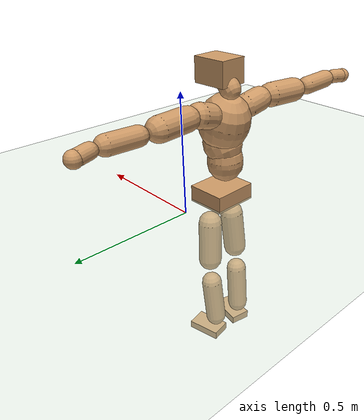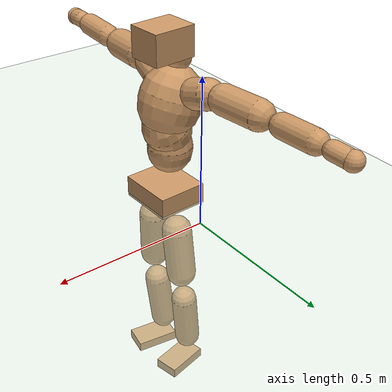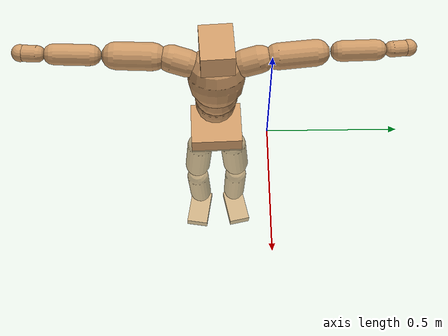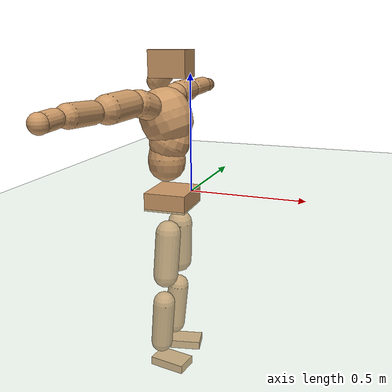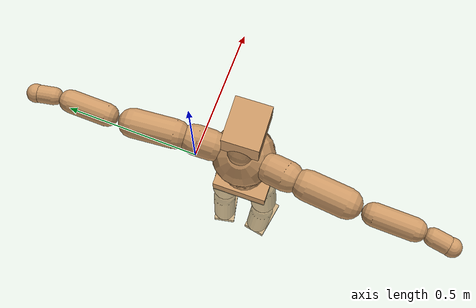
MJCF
<mujoco model="humanoid">
  <compiler coordinate="local" angle="radian"/>
  <default>
    <joint damping="0.0" armature="0.01" stiffness="0.0" limited="true"/>
    <geom conaffinity="1" condim="3" contype="7" margin="0.001" rgba="0.8 0.6 .4 1"/>
  </default>
  <asset>
    <texture type="skybox" builtin="gradient" rgb1=".4 .5 .6" rgb2="0 0 0" width="100" height="100"/>
    <texture builtin="flat" height="1278" mark="cross" markrgb="1 1 1" name="texgeom" random="0.01" rgb1="0.8 0.6 0.4" rgb2="0.8 0.6 0.4" type="cube" width="127"/>
    <texture builtin="checker" height="100" name="texplane" rgb1="0 0 0" rgb2="0.8 0.8 0.8" type="2d" width="100"/>
    <material name="MatPlane" reflectance="0.5" shininess="1" specular="1" texrepeat="60 60" texture="texplane"/>
    <material name="geom" texture="texgeom" texuniform="true"/>
  </asset>
  <worldbody>
    <light cutoff="100" diffuse="1 1 1" dir="-0 0 -1.3" directional="true" exponent="1" pos="0 0 1.3" specular=".1 .1 .1"/>
    <geom conaffinity="1" condim="3" name="floor" pos="0 0 0" rgba="0.8 0.9 0.8 1" size="100 100 .2" type="plane" material="MatPlane"/>
    <body name="Pelvis" pos="-0.0011 -0.1976 0.0375">
      <freejoint name="Pelvis"/>
      <geom type="box" contype="1" conaffinity="1" density="500" pos="-0.0033 -0.0001 -0.0113" size="0.0838 0.0965 0.0361" quat="0.9999 0.0000 0.0000 0.0152" name="Pelvis"/>
      <body name="L_Hip" pos="0.0017 0.0618 -0.079">
        <joint name="L_Hip_x" type="hinge" pos="0 0 0" axis="1 0 0" stiffness="800" damping="80" armature="0.02" range="-180.0000 180.0000"/>
        <joint name="L_Hip_y" type="hinge" pos="0 0 0" axis="0 1 0" stiffness="800" damping="80" armature="0.02" range="-180.0000 180.0000"/>
        <joint name="L_Hip_z" type="hinge" pos="0 0 0" axis="0 0 1" stiffness="800" damping="80" armature="0.02" range="-180.0000 180.0000"/>
        <geom type="capsule" contype="1" conaffinity="1" density="500" fromto="-0.0032 0.0040 -0.0593 -0.0126 0.0159 -0.2373" size="0.0504" name="L_Hip"/>
        <body name="L_Knee" pos="-0.0158 0.0199 -0.2966">
          <joint name="L_Knee_x" type="hinge" pos="0 0 0" axis="1 0 0" stiffness="800" damping="80" armature="0.02" range="-180.0000 180.0000"/>
          <joint name="L_Knee_y" type="hinge" pos="0 0 0" axis="0 1 0" stiffness="800" damping="80" armature="0.02" range="-180.0000 180.0000"/>
          <joint name="L_Knee_z" type="hinge" pos="0 0 0" axis="0 0 1" stiffness="800" damping="80" armature="0.02" range="-180.0000 180.0000"/>
          <geom type="capsule" contype="1" conaffinity="1" density="500" fromto="-0.0065 -0.0020 -0.0635 -0.0258 -0.0080 -0.2540" size="0.0443" name="L_Knee"/>
          <body name="L_Ankle" pos="-0.0323 -0.01 -0.3175">
            <joint name="L_Ankle_x" type="hinge" pos="0 0 0" axis="1 0 0" stiffness="800" damping="80" armature="0.02" range="-180.0000 180.0000"/>
            <joint name="L_Ankle_y" type="hinge" pos="0 0 0" axis="0 1 0" stiffness="800" damping="80" armature="0.02" range="-180.0000 180.0000"/>
            <joint name="L_Ankle_z" type="hinge" pos="0 0 0" axis="0 0 1" stiffness="800" damping="80" armature="0.02" range="-180.0000 180.0000"/>
            <geom type="box" contype="1" conaffinity="1" density="500" pos="0.0508 0.0108 -0.0241" size="0.0738 0.043 0.0179" quat="0.9945 0.0000 0.0000 0.1045" name="L_Ankle"/>
            <body name="L_Toe" pos="0.1017 0.0216 -0.0482">
              <joint name="L_Toe_x" type="hinge" pos="0 0 0" axis="1 0 0" stiffness="500" damping="50" armature="0.02" range="-180.0000 180.0000"/>
              <joint name="L_Toe_y" type="hinge" pos="0 0 0" axis="0 1 0" stiffness="500" damping="50" armature="0.02" range="-180.0000 180.0000"/>
              <joint name="L_Toe_z" type="hinge" pos="0 0 0" axis="0 0 1" stiffness="500" damping="50" armature="0.02" range="-180.0000 180.0000"/>
              <geom type="box" contype="1" conaffinity="1" density="500" pos="0.0000 0.0000 0.0247" size="0.0009 0.0022 0.0009" quat="0.9937 0.0000 0.0000 0.1117" name="L_Toe"/>
            </body>
          </body>
        </body>
      </body>
      <body name="R_Hip" pos="0.0043 -0.0607 -0.08">
        <joint name="R_Hip_x" type="hinge" pos="0 0 0" axis="1 0 0" stiffness="800" damping="80" armature="0.02" range="-180.0000 180.0000"/>
        <joint name="R_Hip_y" type="hinge" pos="0 0 0" axis="0 1 0" stiffness="800" damping="80" armature="0.02" range="-180.0000 180.0000"/>
        <joint name="R_Hip_z" type="hinge" pos="0 0 0" axis="0 0 1" stiffness="800" damping="80" armature="0.02" range="-180.0000 180.0000"/>
        <geom type="capsule" contype="1" conaffinity="1" density="500" fromto="-0.0031 -0.0048 -0.0601 -0.0125 -0.0193 -0.2403" size="0.0499" name="R_Hip"/>
        <body name="R_Knee" pos="-0.0157 -0.0241 -0.3004">
          <joint name="R_Knee_x" type="hinge" pos="0 0 0" axis="1 0 0" stiffness="800" damping="80" armature="0.02" range="-180.0000 180.0000"/>
          <joint name="R_Knee_y" type="hinge" pos="0 0 0" axis="0 1 0" stiffness="800" damping="80" armature="0.02" range="-180.0000 180.0000"/>
          <joint name="R_Knee_z" type="hinge" pos="0 0 0" axis="0 0 1" stiffness="800" damping="80" armature="0.02" range="-180.0000 180.0000"/>
          <geom type="capsule" contype="1" conaffinity="1" density="500" fromto="-0.0063 0.0024 -0.0639 -0.0253 0.0097 -0.2557" size="0.0448" name="R_Knee"/>
          <body name="R_Ankle" pos="-0.0316 0.0121 -0.3196">
            <joint name="R_Ankle_x" type="hinge" pos="0 0 0" axis="1 0 0" stiffness="800" damping="80" armature="0.02" range="-180.0000 180.0000"/>
            <joint name="R_Ankle_y" type="hinge" pos="0 0 0" axis="0 1 0" stiffness="800" damping="80" armature="0.02" range="-180.0000 180.0000"/>
            <joint name="R_Ankle_z" type="hinge" pos="0 0 0" axis="0 0 1" stiffness="800" damping="80" armature="0.02" range="-180.0000 180.0000"/>
            <geom type="box" contype="1" conaffinity="1" density="500" pos="0.0527 -0.0085 -0.0192" size="0.075 0.0441 0.0177" quat="0.9968 0.0000 0.0000 -0.0800" name="R_Ankle"/>
            <body name="R_Toe" pos="0.1053 -0.017 -0.0384">
              <joint name="R_Toe_x" type="hinge" pos="0 0 0" axis="1 0 0" stiffness="500" damping="50" armature="0.02" range="-180.0000 180.0000"/>
              <joint name="R_Toe_y" type="hinge" pos="0 0 0" axis="0 1 0" stiffness="500" damping="50" armature="0.02" range="-180.0000 180.0000"/>
              <joint name="R_Toe_z" type="hinge" pos="0 0 0" axis="0 0 1" stiffness="500" damping="50" armature="0.02" range="-180.0000 180.0000"/>
              <geom type="box" contype="1" conaffinity="1" density="500" pos="0.0000 0.0000 0.0211" size="0.0009 0.0023 0.001" quat="0.9976 0.0000 0.0000 -0.0694" name="R_Toe"/>
            </body>
          </body>
        </body>
      </body>
      <body name="Torso" pos="-0.026 -0.0018 0.0912">
        <joint name="Torso_x" type="hinge" pos="0 0 0" axis="1 0 0" stiffness="1000" damping="100" armature="0.02" range="-180.0000 180.0000"/>
        <joint name="Torso_y" type="hinge" pos="0 0 0" axis="0 1 0" stiffness="1000" damping="100" armature="0.02" range="-180.0000 180.0000"/>
        <joint name="Torso_z" type="hinge" pos="0 0 0" axis="0 0 1" stiffness="1000" damping="100" armature="0.02" range="-180.0000 180.0000"/>
        <geom type="capsule" contype="1" conaffinity="1" density="500" fromto="0.0006 0.0014 0.0607 0.0004 0.0010 0.0405" size="0.0747" name="Torso"/>
        <body name="Spine" pos="0.0009 0.0024 0.1012">
          <joint name="Spine_x" type="hinge" pos="0 0 0" axis="1 0 0" stiffness="1000" damping="100" armature="0.02" range="-180.0000 180.0000"/>
          <joint name="Spine_y" type="hinge" pos="0 0 0" axis="0 1 0" stiffness="1000" damping="100" armature="0.02" range="-180.0000 180.0000"/>
          <joint name="Spine_z" type="hinge" pos="0 0 0" axis="0 0 1" stiffness="1000" damping="100" armature="0.02" range="-180.0000 180.0000"/>
          <geom type="capsule" contype="1" conaffinity="1" density="500" fromto="0.0151 0.0022 0.0271 0.0100 0.0015 0.0181" size="0.0799" name="Spine"/>
          <body name="Chest" pos="0.0251 0.0037 0.0452">
            <joint name="Chest_x" type="hinge" pos="0 0 0" axis="1 0 0" stiffness="1000" damping="100" armature="0.02" range="-180.0000 180.0000"/>
            <joint name="Chest_y" type="hinge" pos="0 0 0" axis="0 1 0" stiffness="1000" damping="100" armature="0.02" range="-180.0000 180.0000"/>
            <joint name="Chest_z" type="hinge" pos="0 0 0" axis="0 0 1" stiffness="1000" damping="100" armature="0.02" range="-180.0000 180.0000"/>
            <geom type="capsule" contype="1" conaffinity="1" density="500" fromto="-0.0322 -0.0004 0.0870 -0.0215 -0.0003 0.0580" size="0.1024" name="Chest"/>
            <body name="Neck" pos="-0.067 0.0003 0.1985">
              <joint name="Neck_x" type="hinge" pos="0 0 0" axis="1 0 0" stiffness="500" damping="50" armature="0.02" range="-180.0000 180.0000"/>
              <joint name="Neck_y" type="hinge" pos="0 0 0" axis="0 1 0" stiffness="500" damping="50" armature="0.02" range="-180.0000 180.0000"/>
              <joint name="Neck_z" type="hinge" pos="0 0 0" axis="0 0 1" stiffness="500" damping="50" armature="0.02" range="-180.0000 180.0000"/>
              <geom type="capsule" contype="1" conaffinity="1" density="500" fromto="0.0087 0.0001 0.0096 0.0350 0.0005 0.0386" size="0.0414" name="Neck"/>
              <body name="Head" pos="0.0437 0.0006 0.0482">
                <joint name="Head_x" type="hinge" pos="0 0 0" axis="1 0 0" stiffness="500" damping="50" armature="0.02" range="-180.0000 180.0000"/>
                <joint name="Head_y" type="hinge" pos="0 0 0" axis="0 1 0" stiffness="500" damping="50" armature="0.02" range="-180.0000 180.0000"/>
                <joint name="Head_z" type="hinge" pos="0 0 0" axis="0 0 1" stiffness="500" damping="50" armature="0.02" range="-180.0000 180.0000"/>
                <geom type="box" contype="1" conaffinity="1" density="500" pos="0.0229 0.0013 0.0251" size="0.0723 0.0589 0.0503" quat="0.9996 0.0000 0.0000 0.0287" name="Head"/>
              </body>
            </body>
            <body name="L_Thorax" pos="-0.0454 0.081 0.1196">
              <joint name="L_Thorax_x" type="hinge" pos="0 0 0" axis="1 0 0" stiffness="500" damping="50" armature="0.02" range="-180.0000 180.0000"/>
              <joint name="L_Thorax_y" type="hinge" pos="0 0 0" axis="0 1 0" stiffness="500" damping="50" armature="0.02" range="-180.0000 180.0000"/>
              <joint name="L_Thorax_z" type="hinge" pos="0 0 0" axis="0 0 1" stiffness="500" damping="50" armature="0.02" range="-180.0000 180.0000"/>
              <geom type="capsule" contype="1" conaffinity="1" density="500" fromto="-0.0020 0.0182 0.0051 -0.0079 0.0727 0.0206" size="0.0501" name="L_Thorax"/>
              <body name="L_Shoulder" pos="-0.0099 0.0909 0.0257">
                <joint name="L_Shoulder_x" type="hinge" pos="0 0 0" axis="1 0 0" stiffness="500" damping="50" armature="0.02" range="-720.0000 720.0000"/>
                <joint name="L_Shoulder_y" type="hinge" pos="0 0 0" axis="0 1 0" stiffness="500" damping="50" armature="0.02" range="-720.0000 720.0000"/>
                <joint name="L_Shoulder_z" type="hinge" pos="0 0 0" axis="0 0 1" stiffness="500" damping="50" armature="0.02" range="-720.0000 720.0000"/>
                <geom type="capsule" contype="1" conaffinity="1" density="500" fromto="-0.0046 0.0454 0.0001 -0.0182 0.1817 0.0004" size="0.0482" name="L_Shoulder"/>
                <body name="L_Elbow" pos="-0.0228 0.2272 0.0005">
                  <joint name="L_Elbow_x" type="hinge" pos="0 0 0" axis="1 0 0" stiffness="500" damping="50" armature="0.02" range="-720.0000 720.0000"/>
                  <joint name="L_Elbow_y" type="hinge" pos="0 0 0" axis="0 1 0" stiffness="500" damping="50" armature="0.02" range="-720.0000 720.0000"/>
                  <joint name="L_Elbow_z" type="hinge" pos="0 0 0" axis="0 0 1" stiffness="500" damping="50" armature="0.02" range="-720.0000 720.0000"/>
                  <geom type="capsule" contype="1" conaffinity="1" density="500" fromto="-0.0002 0.0414 0.0012 -0.0009 0.1655 0.0050" size="0.0373" name="L_Elbow"/>
                  <body name="L_Wrist" pos="-0.0012 0.2069 0.0062">
                    <joint name="L_Wrist_x" type="hinge" pos="0 0 0" axis="1 0 0" stiffness="300" damping="30" armature="0.02" range="-180.0000 180.0000"/>
                    <joint name="L_Wrist_y" type="hinge" pos="0 0 0" axis="0 1 0" stiffness="300" damping="30" armature="0.02" range="-180.0000 180.0000"/>
                    <joint name="L_Wrist_z" type="hinge" pos="0 0 0" axis="0 0 1" stiffness="300" damping="30" armature="0.02" range="-180.0000 180.0000"/>
                    <geom type="capsule" contype="1" conaffinity="1" density="500" fromto="-0.0024 0.0150 -0.0017 -0.0097 0.0599 -0.0068" size="0.0288" name="L_Wrist"/>
                    <body name="L_Hand" pos="-0.0122 0.0749 -0.0085">
                      <joint name="L_Hand_x" type="hinge" pos="0 0 0" axis="1 0 0" stiffness="300" damping="30" armature="0.02" range="-180.0000 180.0000"/>
                      <joint name="L_Hand_y" type="hinge" pos="0 0 0" axis="0 1 0" stiffness="300" damping="30" armature="0.02" range="-180.0000 180.0000"/>
                      <joint name="L_Hand_z" type="hinge" pos="0 0 0" axis="0 0 1" stiffness="300" damping="30" armature="0.02" range="-180.0000 180.0000"/>
                      <geom type="sphere" contype="1" conaffinity="1" density="500" size="0.0304" pos="0.0000 0.0000 0.0000" name="L_Hand"/>
                    </body>
                  </body>
                </body>
              </body>
            </body>
            <body name="R_Thorax" pos="-0.0486 -0.0832 0.1167">
              <joint name="R_Thorax_x" type="hinge" pos="0 0 0" axis="1 0 0" stiffness="500" damping="50" armature="0.02" range="-180.0000 180.0000"/>
              <joint name="R_Thorax_y" type="hinge" pos="0 0 0" axis="0 1 0" stiffness="500" damping="50" armature="0.02" range="-180.0000 180.0000"/>
              <joint name="R_Thorax_z" type="hinge" pos="0 0 0" axis="0 0 1" stiffness="500" damping="50" armature="0.02" range="-180.0000 180.0000"/>
              <geom type="capsule" contype="1" conaffinity="1" density="500" fromto="-0.0031 -0.0188 0.0055 -0.0125 -0.0753 0.0221" size="0.05" name="R_Thorax"/>
              <body name="R_Shoulder" pos="-0.0156 -0.0941 0.0276">
                <joint name="R_Shoulder_x" type="hinge" pos="0 0 0" axis="1 0 0" stiffness="500" damping="50" armature="0.02" range="-720.0000 720.0000"/>
                <joint name="R_Shoulder_y" type="hinge" pos="0 0 0" axis="0 1 0" stiffness="500" damping="50" armature="0.02" range="-720.0000 720.0000"/>
                <joint name="R_Shoulder_z" type="hinge" pos="0 0 0" axis="0 0 1" stiffness="500" damping="50" armature="0.02" range="-720.0000 720.0000"/>
                <geom type="capsule" contype="1" conaffinity="1" density="500" fromto="-0.0029 -0.0444 -0.0012 -0.0116 -0.1777 -0.0049" size="0.0503" name="R_Shoulder"/>
                <body name="R_Elbow" pos="-0.0145 -0.2221 -0.0062">
                  <joint name="R_Elbow_x" type="hinge" pos="0 0 0" axis="1 0 0" stiffness="500" damping="50" armature="0.02" range="-720.0000 720.0000"/>
                  <joint name="R_Elbow_y" type="hinge" pos="0 0 0" axis="0 1 0" stiffness="500" damping="50" armature="0.02" range="-720.0000 720.0000"/>
                  <joint name="R_Elbow_z" type="hinge" pos="0 0 0" axis="0 0 1" stiffness="500" damping="50" armature="0.02" range="-720.0000 720.0000"/>
                  <geom type="capsule" contype="1" conaffinity="1" density="500" fromto="-0.0005 -0.0432 0.0020 -0.0021 -0.1729 0.0080" size="0.0381" name="R_Elbow"/>
                  <body name="R_Wrist" pos="-0.0026 -0.2161 0.01">
                    <joint name="R_Wrist_x" type="hinge" pos="0 0 0" axis="1 0 0" stiffness="300" damping="30" armature="0.02" range="-180.0000 180.0000"/>
                    <joint name="R_Wrist_y" type="hinge" pos="0 0 0" axis="0 1 0" stiffness="300" damping="30" armature="0.02" range="-180.0000 180.0000"/>
                    <joint name="R_Wrist_z" type="hinge" pos="0 0 0" axis="0 0 1" stiffness="300" damping="30" armature="0.02" range="-180.0000 180.0000"/>
                    <geom type="capsule" contype="1" conaffinity="1" density="500" fromto="-0.0020 -0.0154 -0.0014 -0.0079 -0.0617 -0.0055" size="0.0301" name="R_Wrist"/>
                    <body name="R_Hand" pos="-0.0099 -0.0772 -0.0069">
                      <joint name="R_Hand_x" type="hinge" pos="0 0 0" axis="1 0 0" stiffness="300" damping="30" armature="0.02" range="-180.0000 180.0000"/>
                      <joint name="R_Hand_y" type="hinge" pos="0 0 0" axis="0 1 0" stiffness="300" damping="30" armature="0.02" range="-180.0000 180.0000"/>
                      <joint name="R_Hand_z" type="hinge" pos="0 0 0" axis="0 0 1" stiffness="300" damping="30" armature="0.02" range="-180.0000 180.0000"/>
                      <geom type="sphere" contype="1" conaffinity="1" density="500" size="0.0312" pos="0.0000 0.0000 0.0000" name="R_Hand"/>
                    </body>
                  </body>
                </body>
              </body>
            </body>
          </body>
        </body>
      </body>
    </body>
  </worldbody>
  <actuator>
    <motor name="L_Hip_x" joint="L_Hip_x" gear="500"/>
    <motor name="L_Hip_y" joint="L_Hip_y" gear="500"/>
    <motor name="L_Hip_z" joint="L_Hip_z" gear="500"/>
    <motor name="L_Knee_x" joint="L_Knee_x" gear="500"/>
    <motor name="L_Knee_y" joint="L_Knee_y" gear="500"/>
    <motor name="L_Knee_z" joint="L_Knee_z" gear="500"/>
    <motor name="L_Ankle_x" joint="L_Ankle_x" gear="500"/>
    <motor name="L_Ankle_y" joint="L_Ankle_y" gear="500"/>
    <motor name="L_Ankle_z" joint="L_Ankle_z" gear="500"/>
    <motor name="L_Toe_x" joint="L_Toe_x" gear="500"/>
    <motor name="L_Toe_y" joint="L_Toe_y" gear="500"/>
    <motor name="L_Toe_z" joint="L_Toe_z" gear="500"/>
    <motor name="R_Hip_x" joint="R_Hip_x" gear="500"/>
    <motor name="R_Hip_y" joint="R_Hip_y" gear="500"/>
    <motor name="R_Hip_z" joint="R_Hip_z" gear="500"/>
    <motor name="R_Knee_x" joint="R_Knee_x" gear="500"/>
    <motor name="R_Knee_y" joint="R_Knee_y" gear="500"/>
    <motor name="R_Knee_z" joint="R_Knee_z" gear="500"/>
    <motor name="R_Ankle_x" joint="R_Ankle_x" gear="500"/>
    <motor name="R_Ankle_y" joint="R_Ankle_y" gear="500"/>
    <motor name="R_Ankle_z" joint="R_Ankle_z" gear="500"/>
    <motor name="R_Toe_x" joint="R_Toe_x" gear="500"/>
    <motor name="R_Toe_y" joint="R_Toe_y" gear="500"/>
    <motor name="R_Toe_z" joint="R_Toe_z" gear="500"/>
    <motor name="Torso_x" joint="Torso_x" gear="500"/>
    <motor name="Torso_y" joint="Torso_y" gear="500"/>
    <motor name="Torso_z" joint="Torso_z" gear="500"/>
    <motor name="Spine_x" joint="Spine_x" gear="500"/>
    <motor name="Spine_y" joint="Spine_y" gear="500"/>
    <motor name="Spine_z" joint="Spine_z" gear="500"/>
    <motor name="Chest_x" joint="Chest_x" gear="500"/>
    <motor name="Chest_y" joint="Chest_y" gear="500"/>
    <motor name="Chest_z" joint="Chest_z" gear="500"/>
    <motor name="Neck_x" joint="Neck_x" gear="500"/>
    <motor name="Neck_y" joint="Neck_y" gear="500"/>
    <motor name="Neck_z" joint="Neck_z" gear="500"/>
    <motor name="Head_x" joint="Head_x" gear="500"/>
    <motor name="Head_y" joint="Head_y" gear="500"/>
    <motor name="Head_z" joint="Head_z" gear="500"/>
    <motor name="L_Thorax_x" joint="L_Thorax_x" gear="500"/>
    <motor name="L_Thorax_y" joint="L_Thorax_y" gear="500"/>
    <motor name="L_Thorax_z" joint="L_Thorax_z" gear="500"/>
    <motor name="L_Shoulder_x" joint="L_Shoulder_x" gear="500"/>
    <motor name="L_Shoulder_y" joint="L_Shoulder_y" gear="500"/>
    <motor name="L_Shoulder_z" joint="L_Shoulder_z" gear="500"/>
    <motor name="L_Elbow_x" joint="L_Elbow_x" gear="500"/>
    <motor name="L_Elbow_y" joint="L_Elbow_y" gear="500"/>
    <motor name="L_Elbow_z" joint="L_Elbow_z" gear="500"/>
    <motor name="L_Wrist_x" joint="L_Wrist_x" gear="500"/>
    <motor name="L_Wrist_y" joint="L_Wrist_y" gear="500"/>
    <motor name="L_Wrist_z" joint="L_Wrist_z" gear="500"/>
    <motor name="L_Hand_x" joint="L_Hand_x" gear="500"/>
    <motor name="L_Hand_y" joint="L_Hand_y" gear="500"/>
    <motor name="L_Hand_z" joint="L_Hand_z" gear="500"/>
    <motor name="R_Thorax_x" joint="R_Thorax_x" gear="500"/>
    <motor name="R_Thorax_y" joint="R_Thorax_y" gear="500"/>
    <motor name="R_Thorax_z" joint="R_Thorax_z" gear="500"/>
    <motor name="R_Shoulder_x" joint="R_Shoulder_x" gear="500"/>
    <motor name="R_Shoulder_y" joint="R_Shoulder_y" gear="500"/>
    <motor name="R_Shoulder_z" joint="R_Shoulder_z" gear="500"/>
    <motor name="R_Elbow_x" joint="R_Elbow_x" gear="500"/>
    <motor name="R_Elbow_y" joint="R_Elbow_y" gear="500"/>
    <motor name="R_Elbow_z" joint="R_Elbow_z" gear="500"/>
    <motor name="R_Wrist_x" joint="R_Wrist_x" gear="500"/>
    <motor name="R_Wrist_y" joint="R_Wrist_y" gear="500"/>
    <motor name="R_Wrist_z" joint="R_Wrist_z" gear="500"/>
    <motor name="R_Hand_x" joint="R_Hand_x" gear="500"/>
    <motor name="R_Hand_y" joint="R_Hand_y" gear="500"/>
    <motor name="R_Hand_z" joint="R_Hand_z" gear="500"/>
  </actuator>
  <contact>
    <exclude body1="Torso" body2="Chest"/>
    <exclude body1="Head" body2="Chest"/>
    <exclude body1="R_Knee" body2="R_Toe"/>
    <exclude body1="R_Knee" body2="L_Ankle"/>
    <exclude body1="R_Knee" body2="L_Toe"/>
    <exclude body1="L_Knee" body2="L_Toe"/>
    <exclude body1="L_Knee" body2="R_Ankle"/>
    <exclude body1="L_Knee" body2="R_Toe"/>
    <exclude body1="L_Shoulder" body2="Chest"/>
    <exclude body1="R_Shoulder" body2="Chest"/>
  </contact>
  <sensor/>
  <size njmax="700" nconmax="700"/>
</mujoco>
